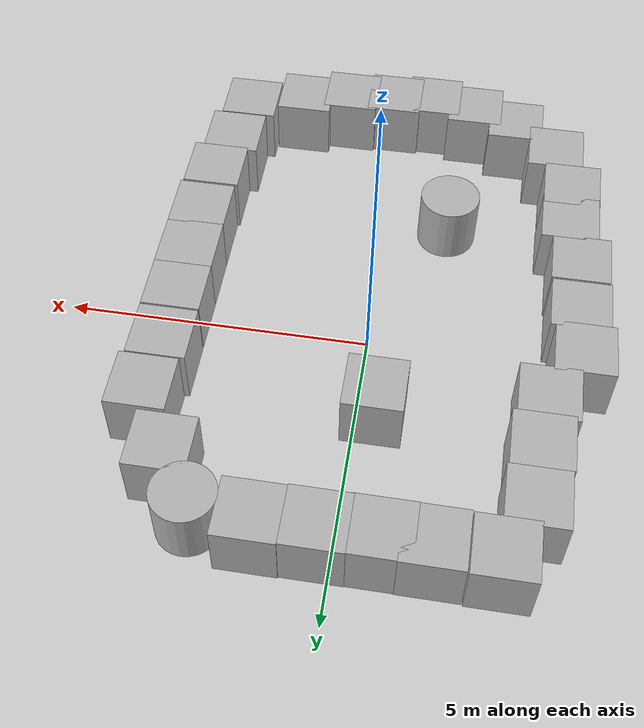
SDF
<sdf version='1.10'>
  <world name='empty'>
    <physics name='1ms' type='ignored'>
      <max_step_size>0.004</max_step_size>
      <real_time_factor>1</real_time_factor>
      <real_time_update_rate>250</real_time_update_rate>
    </physics>
    <plugin name='gz::sim::systems::Physics' filename='gz-sim-physics-system'/>
    <plugin name='gz::sim::systems::UserCommands' filename='gz-sim-user-commands-system'/>
    <plugin name='gz::sim::systems::SceneBroadcaster' filename='gz-sim-scene-broadcaster-system'/>
    <plugin name='gz::sim::systems::Sensors' filename='gz-sim-sensors-system'>
      <render_engine>ogre2</render_engine>
    </plugin>
    <plugin name='gz::sim::systems::Contact' filename='gz-sim-contact-system'/>
    <gravity>0 0 -9.8000000000000007</gravity>
    <magnetic_field>5.5644999999999998e-06 2.2875799999999999e-05 -4.2388400000000002e-05</magnetic_field>
    <atmosphere type='adiabatic'/>
    <scene>
      <ambient>0.400000006 0.400000006 0.400000006 1</ambient>
      <background>0.699999988 0.699999988 0.699999988 1</background>
      <shadows>true</shadows>
    </scene>
    <model name='ground_plane'>
      <static>true</static>
      <link name='link'>
        <collision name='collision'>
          <geometry>
            <plane>
              <normal>0 0 1</normal>
              <size>100 100</size>
            </plane>
          </geometry>
          <surface>
            <friction>
              <ode/>
            </friction>
            <bounce/>
            <contact/>
          </surface>
        </collision>
        <visual name='visual'>
          <geometry>
            <plane>
              <normal>0 0 1</normal>
              <size>100 100</size>
            </plane>
          </geometry>
          <material>
            <ambient>0.800000012 0.800000012 0.800000012 1</ambient>
            <diffuse>0.800000012 0.800000012 0.800000012 1</diffuse>
            <specular>0.800000012 0.800000012 0.800000012 1</specular>
          </material>
        </visual>
        <pose>0 0 0 0 0 0</pose>
        <inertial>
          <pose>0 0 0 0 0 0</pose>
          <mass>1</mass>
          <inertia>
            <ixx>1</ixx>
            <ixy>0</ixy>
            <ixz>0</ixz>
            <iyy>1</iyy>
            <iyz>0</iyz>
            <izz>1</izz>
          </inertia>
        </inertial>
        <enable_wind>false</enable_wind>
      </link>
      <pose>0 0 0 0 0 0</pose>
      <self_collide>false</self_collide>
    </model>
    <model name='box'>
      <pose>1.809546199799039 -4.9402323376090997 0.49999999029968045 -2.986547555354007e-10 1.958538267671535e-08 5.8365317810617304e-07</pose>
      <link name='box_link'>
        <inertial>
          <inertia>
            <ixx>0.16666</ixx>
            <ixy>0</ixy>
            <ixz>0</ixz>
            <iyy>0.16666</iyy>
            <iyz>0</iyz>
            <izz>0.16666</izz>
          </inertia>
          <mass>1</mass>
          <pose>0 0 0 0 0 0</pose>
        </inertial>
        <collision name='box_collision'>
          <geometry>
            <box>
              <size>0.95 0.95 1</size>
            </box>
          </geometry>
          <surface>
            <friction>
              <ode/>
            </friction>
            <bounce/>
            <contact/>
          </surface>
        </collision>
        <visual name='box_visual'>
          <geometry>
            <box>
              <size>0.95 0.95 1</size>
            </box>
          </geometry>
          <material>
            <ambient>0.300000012 0.300000012 0.300000012 1</ambient>
            <diffuse>0.699999988 0.699999988 0.699999988 1</diffuse>
            <specular>1 1 1 1</specular>
          </material>
        </visual>
        <pose>0 0 0 0 0 0</pose>
        <enable_wind>false</enable_wind>
      </link>
      <static>true</static>
      <self_collide>false</self_collide>
    </model>
    <model name='cylinder'>
      <pose>2.1410001245905712 3.7526052725357246 0.50000115523893041 -5.2950195691341743e-07 2.2663390121578483e-06 -0.0083060642175395091</pose>
      <link name='cylinder_link'>
        <inertial>
          <inertia>
            <ixx>0.14580000000000001</ixx>
            <ixy>0</ixy>
            <ixz>0</ixz>
            <iyy>0.14580000000000001</iyy>
            <iyz>0</iyz>
            <izz>0.125</izz>
          </inertia>
          <mass>1</mass>
          <pose>0 0 0 0 0 0</pose>
        </inertial>
        <collision name='cylinder_collision'>
          <geometry>
            <cylinder>
              <radius>0.5</radius>
              <length>1</length>
            </cylinder>
          </geometry>
          <surface>
            <friction>
              <ode/>
            </friction>
            <bounce/>
            <contact/>
          </surface>
        </collision>
        <visual name='cylinder_visual'>
          <geometry>
            <cylinder>
              <radius>0.5</radius>
              <length>1</length>
            </cylinder>
          </geometry>
          <material>
            <ambient>0.300000012 0.300000012 0.300000012 1</ambient>
            <diffuse>0.699999988 0.699999988 0.699999988 1</diffuse>
            <specular>1 1 1 1</specular>
          </material>
        </visual>
        <pose>0 0 0 0 0 0</pose>
        <enable_wind>false</enable_wind>
      </link>
      <static>true</static>
      <self_collide>false</self_collide>
    </model>

    <model name='box_0'>
      <pose>2.6603934322666709 2.9766633373083851 0.49999999125674222 -2.207446480334921e-08 -4.6172541070894904e-09 0.00166350674711508</pose>
      <link name='box_link'>
        <inertial>
          <inertia>
            <ixx>0.16666</ixx>
            <ixy>0</ixy>
            <ixz>0</ixz>
            <iyy>0.16666</iyy>
            <iyz>0</iyz>
            <izz>0.16666</izz>
          </inertia>
          <mass>1</mass>
          <pose>0 0 0 0 0 0</pose>
        </inertial>
        <collision name='box_collision'>
          <geometry>
            <box>
              <size>0.95 0.95 1</size>
            </box>
          </geometry>
          <surface>
            <friction>
              <ode/>
            </friction>
            <bounce/>
            <contact/>
          </surface>
        </collision>
        <visual name='box_visual'>
          <geometry>
            <box>
              <size>0.95 0.95 1</size>
            </box>
          </geometry>
          <material>
            <ambient>0.300000012 0.300000012 0.300000012 1</ambient>
            <diffuse>0.699999988 0.699999988 0.699999988 1</diffuse>
            <specular>1 1 1 1</specular>
          </material>
        </visual>
        <pose>0 0 0 0 0 0</pose>
        <enable_wind>false</enable_wind>
      </link>
      <static>true</static>
      <self_collide>false</self_collide>
    </model>
    <model name='box_1'>
      <pose>3.2035257619709796 1.9767363113539189 0.4999999904291339 -2.0251758846170973e-08 -1.1458137137976019e-09 3.722328903868478e-06</pose>
      <link name='box_link'>
        <inertial>
          <inertia>
            <ixx>0.16666</ixx>
            <ixy>0</ixy>
            <ixz>0</ixz>
            <iyy>0.16666</iyy>
            <iyz>0</iyz>
            <izz>0.16666</izz>
          </inertia>
          <mass>1</mass>
          <pose>0 0 0 0 0 0</pose>
        </inertial>
        <collision name='box_collision'>
          <geometry>
            <box>
              <size>0.95 0.95 1</size>
            </box>
          </geometry>
          <surface>
            <friction>
              <ode/>
            </friction>
            <bounce/>
            <contact/>
          </surface>
        </collision>
        <visual name='box_visual'>
          <geometry>
            <box>
              <size>0.95 0.95 1</size>
            </box>
          </geometry>
          <material>
            <ambient>0.300000012 0.300000012 0.300000012 1</ambient>
            <diffuse>0.699999988 0.699999988 0.699999988 1</diffuse>
            <specular>1 1 1 1</specular>
          </material>
        </visual>
        <pose>0 0 0 0 0 0</pose>
        <enable_wind>false</enable_wind>
      </link>
      <static>true</static>
      <self_collide>false</self_collide>
    </model>
    <model name='box_2'>
      <pose>3.1228450742552147 1.0066171602471112 0.49999999065514378 -2.0093639513144701e-08 1.55998168735706e-09 2.8588034552977104e-07</pose>
      <link name='box_link'>
        <inertial>
          <inertia>
            <ixx>0.16666</ixx>
            <ixy>0</ixy>
            <ixz>0</ixz>
            <iyy>0.16666</iyy>
            <iyz>0</iyz>
            <izz>0.16666</izz>
          </inertia>
          <mass>1</mass>
          <pose>0 0 0 0 0 0</pose>
        </inertial>
        <collision name='box_collision'>
          <geometry>
            <box>
              <size>0.95 0.95 1</size>
            </box>
          </geometry>
          <surface>
            <friction>
              <ode/>
            </friction>
            <bounce/>
            <contact/>
          </surface>
        </collision>
        <visual name='box_visual'>
          <geometry>
            <box>
              <size>0.95 0.95 1</size>
            </box>
          </geometry>
          <material>
            <ambient>0.300000012 0.300000012 0.300000012 1</ambient>
            <diffuse>0.699999988 0.699999988 0.699999988 1</diffuse>
            <specular>1 1 1 1</specular>
          </material>
        </visual>
        <pose>0 0 0 0 0 0</pose>
        <enable_wind>false</enable_wind>
      </link>
      <static>true</static>
      <self_collide>false</self_collide>
    </model>
    <model name='box_3'>
      <pose>3.1228450252028361 0.029686162780629657 0.49999999083574903 -2.0718320255241097e-08 2.4006082701188849e-09 1.1021439447636742e-08</pose>
      <link name='box_link'>
        <inertial>
          <inertia>
            <ixx>0.16666</ixx>
            <ixy>0</ixy>
            <ixz>0</ixz>
            <iyy>0.16666</iyy>
            <iyz>0</iyz>
            <izz>0.16666</izz>
          </inertia>
          <mass>1</mass>
          <pose>0 0 0 0 0 0</pose>
        </inertial>
        <collision name='box_collision'>
          <geometry>
            <box>
              <size>0.95 0.95 1</size>
            </box>
          </geometry>
          <surface>
            <friction>
              <ode/>
            </friction>
            <bounce/>
            <contact/>
          </surface>
        </collision>
        <visual name='box_visual'>
          <geometry>
            <box>
              <size>0.95 0.95 1</size>
            </box>
          </geometry>
          <material>
            <ambient>0.300000012 0.300000012 0.300000012 1</ambient>
            <diffuse>0.699999988 0.699999988 0.699999988 1</diffuse>
            <specular>1 1 1 1</specular>
          </material>
        </visual>
        <pose>0 0 0 0 0 0</pose>
        <enable_wind>false</enable_wind>
      </link>
      <static>true</static>
      <self_collide>false</self_collide>
    </model>
    <model name='box_4'>
      <pose>3.1228451167951263 -0.88949563487963212 0.4999999902038082 1.4065555202733004e-08 1.916044049123483e-09 -1.8032760088271216e-08</pose>
      <link name='box_link'>
        <inertial>
          <inertia>
            <ixx>0.16666</ixx>
            <ixy>0</ixy>
            <ixz>0</ixz>
            <iyy>0.16666</iyy>
            <iyz>0</iyz>
            <izz>0.16666</izz>
          </inertia>
          <mass>1</mass>
          <pose>0 0 0 0 0 0</pose>
        </inertial>
        <collision name='box_collision'>
          <geometry>
            <box>
              <size>0.95 0.95 1</size>
            </box>
          </geometry>
          <surface>
            <friction>
              <ode/>
            </friction>
            <bounce/>
            <contact/>
          </surface>
        </collision>
        <visual name='box_visual'>
          <geometry>
            <box>
              <size>0.95 0.95 1</size>
            </box>
          </geometry>
          <material>
            <ambient>0.300000012 0.300000012 0.300000012 1</ambient>
            <diffuse>0.699999988 0.699999988 0.699999988 1</diffuse>
            <specular>1 1 1 1</specular>
          </material>
        </visual>
        <pose>0 0 0 0 0 0</pose>
        <enable_wind>false</enable_wind>
      </link>
      <static>true</static>
      <self_collide>false</self_collide>
    </model>
    <model name='box_5'>
      <pose>3.1225490243904845 -1.8117459339456106 0.49999999030205478 1.9459012981212005e-08 1.0456011089368251e-10 -1.6225034581375315e-07</pose>
      <link name='box_link'>
        <inertial>
          <inertia>
            <ixx>0.16666</ixx>
            <ixy>0</ixy>
            <ixz>0</ixz>
            <iyy>0.16666</iyy>
            <iyz>0</iyz>
            <izz>0.16666</izz>
          </inertia>
          <mass>1</mass>
          <pose>0 0 0 0 0 0</pose>
        </inertial>
        <collision name='box_collision'>
          <geometry>
            <box>
              <size>0.95 0.95 1</size>
            </box>
          </geometry>
          <surface>
            <friction>
              <ode/>
            </friction>
            <bounce/>
            <contact/>
          </surface>
        </collision>
        <visual name='box_visual'>
          <geometry>
            <box>
              <size>0.95 0.95 1</size>
            </box>
          </geometry>
          <material>
            <ambient>0.300000012 0.300000012 0.300000012 1</ambient>
            <diffuse>0.699999988 0.699999988 0.699999988 1</diffuse>
            <specular>1 1 1 1</specular>
          </material>
        </visual>
        <pose>0 0 0 0 0 0</pose>
        <enable_wind>false</enable_wind>
      </link>
      <static>true</static>
      <self_collide>false</self_collide>
    </model>
    <model name='box_6'>
      <pose>3.0816127278921703 -2.7953392068309468 0.4999999902129747 1.9582048937141098e-08 -1.8308123312482564e-11 -3.9993023369416865e-07</pose>
      <link name='box_link'>
        <inertial>
          <inertia>
            <ixx>0.16666</ixx>
            <ixy>0</ixy>
            <ixz>0</ixz>
            <iyy>0.16666</iyy>
            <iyz>0</iyz>
            <izz>0.16666</izz>
          </inertia>
          <mass>1</mass>
          <pose>0 0 0 0 0 0</pose>
        </inertial>
        <collision name='box_collision'>
          <geometry>
            <box>
              <size>0.95 0.95 1</size>
            </box>
          </geometry>
          <surface>
            <friction>
              <ode/>
            </friction>
            <bounce/>
            <contact/>
          </surface>
        </collision>
        <visual name='box_visual'>
          <geometry>
            <box>
              <size>0.95 0.95 1</size>
            </box>
          </geometry>
          <material>
            <ambient>0.300000012 0.300000012 0.300000012 1</ambient>
            <diffuse>0.699999988 0.699999988 0.699999988 1</diffuse>
            <specular>1 1 1 1</specular>
          </material>
        </visual>
        <pose>0 0 0 0 0 0</pose>
        <enable_wind>false</enable_wind>
      </link>
      <static>true</static>
      <self_collide>false</self_collide>
    </model>
    <model name='box_7'>
      <pose>2.9267532254914657 -3.688935173427331 0.4999999902933952 1.9401568842218004e-08 5.665215500348737e-11 -2.5459842026370619e-07</pose>
      <link name='box_link'>
        <inertial>
          <inertia>
            <ixx>0.16666</ixx>
            <ixy>0</ixy>
            <ixz>0</ixz>
            <iyy>0.16666</iyy>
            <iyz>0</iyz>
            <izz>0.16666</izz>
          </inertia>
          <mass>1</mass>
          <pose>0 0 0 0 0 0</pose>
        </inertial>
        <collision name='box_collision'>
          <geometry>
            <box>
              <size>0.95 0.95 1</size>
            </box>
          </geometry>
          <surface>
            <friction>
              <ode/>
            </friction>
            <bounce/>
            <contact/>
          </surface>
        </collision>
        <visual name='box_visual'>
          <geometry>
            <box>
              <size>0.95 0.95 1</size>
            </box>
          </geometry>
          <material>
            <ambient>0.300000012 0.300000012 0.300000012 1</ambient>
            <diffuse>0.699999988 0.699999988 0.699999988 1</diffuse>
            <specular>1 1 1 1</specular>
          </material>
        </visual>
        <pose>0 0 0 0 0 0</pose>
        <enable_wind>false</enable_wind>
      </link>
      <static>true</static>
      <self_collide>false</self_collide>
    </model>
    <model name='box_8'>
      <pose>2.7873074039135548 -4.6545508624547338 0.49999999962364311 3.7118111288328937e-08 3.7799812925208874e-08 5.0589760782613717e-07</pose>
      <link name='box_link'>
        <inertial>
          <inertia>
            <ixx>0.16666</ixx>
            <ixy>0</ixy>
            <ixz>0</ixz>
            <iyy>0.16666</iyy>
            <iyz>0</iyz>
            <izz>0.16666</izz>
          </inertia>
          <mass>1</mass>
          <pose>0 0 0 0 0 0</pose>
        </inertial>
        <collision name='box_collision'>
          <geometry>
            <box>
              <size>0.95 0.95 1</size>
            </box>
          </geometry>
          <surface>
            <friction>
              <ode/>
            </friction>
            <bounce/>
            <contact/>
          </surface>
        </collision>
        <visual name='box_visual'>
          <geometry>
            <box>
              <size>0.95 0.95 1</size>
            </box>
          </geometry>
          <material>
            <ambient>0.300000012 0.300000012 0.300000012 1</ambient>
            <diffuse>0.699999988 0.699999988 0.699999988 1</diffuse>
            <specular>1 1 1 1</specular>
          </material>
        </visual>
        <pose>0 0 0 0 0 0</pose>
        <enable_wind>false</enable_wind>
      </link>
      <static>true</static>
      <self_collide>false</self_collide>
    </model>
    <model name='box_9'>
      <pose>1.1790364302105372 3.8857356265624712 0.49999999300209635 -1.9566314054251308e-08 2.7697514688775331e-08 1.3844576776734326e-07</pose>
      <link name='box_link'>
        <inertial>
          <inertia>
            <ixx>0.16666</ixx>
            <ixy>0</ixy>
            <ixz>0</ixz>
            <iyy>0.16666</iyy>
            <iyz>0</iyz>
            <izz>0.16666</izz>
          </inertia>
          <mass>1</mass>
          <pose>0 0 0 0 0 0</pose>
        </inertial>
        <collision name='box_collision'>
          <geometry>
            <box>
              <size>0.95 0.95 1</size>
            </box>
          </geometry>
          <surface>
            <friction>
              <ode/>
            </friction>
            <bounce/>
            <contact/>
          </surface>
        </collision>
        <visual name='box_visual'>
          <geometry>
            <box>
              <size>0.95 0.95 1</size>
            </box>
          </geometry>
          <material>
            <ambient>0.300000012 0.300000012 0.300000012 1</ambient>
            <diffuse>0.699999988 0.699999988 0.699999988 1</diffuse>
            <specular>1 1 1 1</specular>
          </material>
        </visual>
        <pose>0 0 0 0 0 0</pose>
        <enable_wind>false</enable_wind>
      </link>
      <static>true</static>
      <self_collide>false</self_collide>
    </model>
    <model name='box_10'>
      <pose>0.2323113808103574 3.8697468031929829 0.49999999071613677 -2.1072304912975059e-09 2.0633341390026428e-08 7.5409881506112208e-08</pose>
      <link name='box_link'>
        <inertial>
          <inertia>
            <ixx>0.16666</ixx>
            <ixy>0</ixy>
            <ixz>0</ixz>
            <iyy>0.16666</iyy>
            <iyz>0</iyz>
            <izz>0.16666</izz>
          </inertia>
          <mass>1</mass>
          <pose>0 0 0 0 0 0</pose>
        </inertial>
        <collision name='box_collision'>
          <geometry>
            <box>
              <size>0.95 0.95 1</size>
            </box>
          </geometry>
          <surface>
            <friction>
              <ode/>
            </friction>
            <bounce/>
            <contact/>
          </surface>
        </collision>
        <visual name='box_visual'>
          <geometry>
            <box>
              <size>0.95 0.95 1</size>
            </box>
          </geometry>
          <material>
            <ambient>0.300000012 0.300000012 0.300000012 1</ambient>
            <diffuse>0.699999988 0.699999988 0.699999988 1</diffuse>
            <specular>1 1 1 1</specular>
          </material>
        </visual>
        <pose>0 0 0 0 0 0</pose>
        <enable_wind>false</enable_wind>
      </link>
      <static>true</static>
      <self_collide>false</self_collide>
    </model>
    <model name='box_11'>
      <pose>-0.68722848556540495 3.8625809285938759 0.49999999021193509 7.3765246244905513e-11 -1.218859090891808e-08 -3.677853341798169e-08</pose>
      <link name='box_link'>
        <inertial>
          <inertia>
            <ixx>0.16666</ixx>
            <ixy>0</ixy>
            <ixz>0</ixz>
            <iyy>0.16666</iyy>
            <iyz>0</iyz>
            <izz>0.16666</izz>
          </inertia>
          <mass>1</mass>
          <pose>0 0 0 0 0 0</pose>
        </inertial>
        <collision name='box_collision'>
          <geometry>
            <box>
              <size>0.95 0.95 1</size>
            </box>
          </geometry>
          <surface>
            <friction>
              <ode/>
            </friction>
            <bounce/>
            <contact/>
          </surface>
        </collision>
        <visual name='box_visual'>
          <geometry>
            <box>
              <size>0.95 0.95 1</size>
            </box>
          </geometry>
          <material>
            <ambient>0.300000012 0.300000012 0.300000012 1</ambient>
            <diffuse>0.699999988 0.699999988 0.699999988 1</diffuse>
            <specular>1 1 1 1</specular>
          </material>
        </visual>
        <pose>0 0 0 0 0 0</pose>
        <enable_wind>false</enable_wind>
      </link>
      <static>true</static>
      <self_collide>false</self_collide>
    </model>
    <model name='box_12'>
      <pose>-1.4210976769018788 3.870547864142853 0.49999999307971599 -1.0877208602376788e-08 -2.4708303913871301e-08 -4.2179947197630195e-07</pose>
      <link name='box_link'>
        <inertial>
          <inertia>
            <ixx>0.16666</ixx>
            <ixy>0</ixy>
            <ixz>0</ixz>
            <iyy>0.16666</iyy>
            <iyz>0</iyz>
            <izz>0.16666</izz>
          </inertia>
          <mass>1</mass>
          <pose>0 0 0 0 0 0</pose>
        </inertial>
        <collision name='box_collision'>
          <geometry>
            <box>
              <size>0.95 0.95 1</size>
            </box>
          </geometry>
          <surface>
            <friction>
              <ode/>
            </friction>
            <bounce/>
            <contact/>
          </surface>
        </collision>
        <visual name='box_visual'>
          <geometry>
            <box>
              <size>0.95 0.95 1</size>
            </box>
          </geometry>
          <material>
            <ambient>0.300000012 0.300000012 0.300000012 1</ambient>
            <diffuse>0.699999988 0.699999988 0.699999988 1</diffuse>
            <specular>1 1 1 1</specular>
          </material>
        </visual>
        <pose>0 0 0 0 0 0</pose>
        <enable_wind>false</enable_wind>
      </link>
      <static>true</static>
      <self_collide>false</self_collide>
    </model>
    <model name='box_13'>
      <pose>-2.3896286204964201 3.8907674573543534 0.49999999878399531 -3.4705777365958035e-08 -3.6732983437401329e-08 -1.0190946607347615e-06</pose>
      <link name='box_link'>
        <inertial>
          <inertia>
            <ixx>0.16666</ixx>
            <ixy>0</ixy>
            <ixz>0</ixz>
            <iyy>0.16666</iyy>
            <iyz>0</iyz>
            <izz>0.16666</izz>
          </inertia>
          <mass>1</mass>
          <pose>0 0 0 0 0 0</pose>
        </inertial>
        <collision name='box_collision'>
          <geometry>
            <box>
              <size>0.95 0.95 1</size>
            </box>
          </geometry>
          <surface>
            <friction>
              <ode/>
            </friction>
            <bounce/>
            <contact/>
          </surface>
        </collision>
        <visual name='box_visual'>
          <geometry>
            <box>
              <size>0.95 0.95 1</size>
            </box>
          </geometry>
          <material>
            <ambient>0.300000012 0.300000012 0.300000012 1</ambient>
            <diffuse>0.699999988 0.699999988 0.699999988 1</diffuse>
            <specular>1 1 1 1</specular>
          </material>
        </visual>
        <pose>0 0 0 0 0 0</pose>
        <enable_wind>false</enable_wind>
      </link>
      <static>true</static>
      <self_collide>false</self_collide>
    </model>
    <model name='box_14'>
      <pose>-2.7891542450667712 3.0229222050459703 0.49999999098076264 -2.0636241415506918e-08 2.6176300848485755e-09 -8.3540372751254159e-07</pose>
      <link name='box_link'>
        <inertial>
          <inertia>
            <ixx>0.16666</ixx>
            <ixy>0</ixy>
            <ixz>0</ixz>
            <iyy>0.16666</iyy>
            <iyz>0</iyz>
            <izz>0.16666</izz>
          </inertia>
          <mass>1</mass>
          <pose>0 0 0 0 0 0</pose>
        </inertial>
        <collision name='box_collision'>
          <geometry>
            <box>
              <size>0.95 0.95 1</size>
            </box>
          </geometry>
          <surface>
            <friction>
              <ode/>
            </friction>
            <bounce/>
            <contact/>
          </surface>
        </collision>
        <visual name='box_visual'>
          <geometry>
            <box>
              <size>0.95 0.95 1</size>
            </box>
          </geometry>
          <material>
            <ambient>0.300000012 0.300000012 0.300000012 1</ambient>
            <diffuse>0.699999988 0.699999988 0.699999988 1</diffuse>
            <specular>1 1 1 1</specular>
          </material>
        </visual>
        <pose>0 0 0 0 0 0</pose>
        <enable_wind>false</enable_wind>
      </link>
      <static>true</static>
      <self_collide>false</self_collide>
    </model>
    <model name='box_15'>
      <pose>-2.8166739059984693 2.0731611730978901 0.49999999112723964 -2.1159136827774953e-08 3.495545631421807e-09 -1.0816444685849916e-06</pose>
      <link name='box_link'>
        <inertial>
          <inertia>
            <ixx>0.16666</ixx>
            <ixy>0</ixy>
            <ixz>0</ixz>
            <iyy>0.16666</iyy>
            <iyz>0</iyz>
            <izz>0.16666</izz>
          </inertia>
          <mass>1</mass>
          <pose>0 0 0 0 0 0</pose>
        </inertial>
        <collision name='box_collision'>
          <geometry>
            <box>
              <size>0.95 0.95 1</size>
            </box>
          </geometry>
          <surface>
            <friction>
              <ode/>
            </friction>
            <bounce/>
            <contact/>
          </surface>
        </collision>
        <visual name='box_visual'>
          <geometry>
            <box>
              <size>0.95 0.95 1</size>
            </box>
          </geometry>
          <material>
            <ambient>0.300000012 0.300000012 0.300000012 1</ambient>
            <diffuse>0.699999988 0.699999988 0.699999988 1</diffuse>
            <specular>1 1 1 1</specular>
          </material>
        </visual>
        <pose>0 0 0 0 0 0</pose>
        <enable_wind>false</enable_wind>
      </link>
      <static>true</static>
      <self_collide>false</self_collide>
    </model>
    <model name='box_16'>
      <pose>-2.8845917791956746 1.2065923013318689 0.49999999175380072 -2.2609156789821474e-08 6.2832201039603404e-09 -2.4839739303039459e-06</pose>
      <link name='box_link'>
        <inertial>
          <inertia>
            <ixx>0.16666</ixx>
            <ixy>0</ixy>
            <ixz>0</ixz>
            <iyy>0.16666</iyy>
            <iyz>0</iyz>
            <izz>0.16666</izz>
          </inertia>
          <mass>1</mass>
          <pose>0 0 0 0 0 0</pose>
        </inertial>
        <collision name='box_collision'>
          <geometry>
            <box>
              <size>0.95 0.95 1</size>
            </box>
          </geometry>
          <surface>
            <friction>
              <ode/>
            </friction>
            <bounce/>
            <contact/>
          </surface>
        </collision>
        <visual name='box_visual'>
          <geometry>
            <box>
              <size>0.95 0.95 1</size>
            </box>
          </geometry>
          <material>
            <ambient>0.300000012 0.300000012 0.300000012 1</ambient>
            <diffuse>0.699999988 0.699999988 0.699999988 1</diffuse>
            <specular>1 1 1 1</specular>
          </material>
        </visual>
        <pose>0 0 0 0 0 0</pose>
        <enable_wind>false</enable_wind>
      </link>
      <static>true</static>
      <self_collide>false</self_collide>
    </model>
    <model name='box_17'>
      <pose>-3.4011477203977813 0.29398457891090723 0.49999999038226994 -1.6949875610735054e-08 -2.2278366807512278e-09 -1.3511211068672923e-06</pose>
      <link name='box_link'>
        <inertial>
          <inertia>
            <ixx>0.16666</ixx>
            <ixy>0</ixy>
            <ixz>0</ixz>
            <iyy>0.16666</iyy>
            <iyz>0</iyz>
            <izz>0.16666</izz>
          </inertia>
          <mass>1</mass>
          <pose>0 0 0 0 0 0</pose>
        </inertial>
        <collision name='box_collision'>
          <geometry>
            <box>
              <size>0.95 0.95 1</size>
            </box>
          </geometry>
          <surface>
            <friction>
              <ode/>
            </friction>
            <bounce/>
            <contact/>
          </surface>
        </collision>
        <visual name='box_visual'>
          <geometry>
            <box>
              <size>0.95 0.95 1</size>
            </box>
          </geometry>
          <material>
            <ambient>0.300000012 0.300000012 0.300000012 1</ambient>
            <diffuse>0.699999988 0.699999988 0.699999988 1</diffuse>
            <specular>1 1 1 1</specular>
          </material>
        </visual>
        <pose>0 0 0 0 0 0</pose>
        <enable_wind>false</enable_wind>
      </link>
      <static>true</static>
      <self_collide>false</self_collide>
    </model>
    <model name='box_18'>
      <pose>-3.3153952992590794 -0.57636908210559123 0.49999999367536552 2.5788371565750717e-08 -1.4321430802037446e-08 1.6196929966422596e-07</pose>
      <link name='box_link'>
        <inertial>
          <inertia>
            <ixx>0.16666</ixx>
            <ixy>0</ixy>
            <ixz>0</ixz>
            <iyy>0.16666</iyy>
            <iyz>0</iyz>
            <izz>0.16666</izz>
          </inertia>
          <mass>1</mass>
          <pose>0 0 0 0 0 0</pose>
        </inertial>
        <collision name='box_collision'>
          <geometry>
            <box>
              <size>0.95 0.95 1</size>
            </box>
          </geometry>
          <surface>
            <friction>
              <ode/>
            </friction>
            <bounce/>
            <contact/>
          </surface>
        </collision>
        <visual name='box_visual'>
          <geometry>
            <box>
              <size>0.95 0.95 1</size>
            </box>
          </geometry>
          <material>
            <ambient>0.300000012 0.300000012 0.300000012 1</ambient>
            <diffuse>0.699999988 0.699999988 0.699999988 1</diffuse>
            <specular>1 1 1 1</specular>
          </material>
        </visual>
        <pose>0 0 0 0 0 0</pose>
        <enable_wind>false</enable_wind>
      </link>
      <static>true</static>
      <self_collide>false</self_collide>
    </model>
    <model name='box_19'>
      <pose>-3.2983043806422065 -1.5571223120397379 0.49999999025446762 1.9625820957091464e-08 1.7812660928576307e-10 4.4632274146016826e-07</pose>
      <link name='box_link'>
        <inertial>
          <inertia>
            <ixx>0.16666</ixx>
            <ixy>0</ixy>
            <ixz>0</ixz>
            <iyy>0.16666</iyy>
            <iyz>0</iyz>
            <izz>0.16666</izz>
          </inertia>
          <mass>1</mass>
          <pose>0 0 0 0 0 0</pose>
        </inertial>
        <collision name='box_collision'>
          <geometry>
            <box>
              <size>0.95 0.95 1</size>
            </box>
          </geometry>
          <surface>
            <friction>
              <ode/>
            </friction>
            <bounce/>
            <contact/>
          </surface>
        </collision>
        <visual name='box_visual'>
          <geometry>
            <box>
              <size>0.95 0.95 1</size>
            </box>
          </geometry>
          <material>
            <ambient>0.300000012 0.300000012 0.300000012 1</ambient>
            <diffuse>0.699999988 0.699999988 0.699999988 1</diffuse>
            <specular>1 1 1 1</specular>
          </material>
        </visual>
        <pose>0 0 0 0 0 0</pose>
        <enable_wind>false</enable_wind>
      </link>
      <static>true</static>
      <self_collide>false</self_collide>
    </model>
    <model name='box_20'>
      <pose>-3.1017780184606472 -2.4682114057626028 0.49999999050725791 1.9904116522240299e-08 9.3875736121459313e-10 3.0322020871411945e-07</pose>
      <link name='box_link'>
        <inertial>
          <inertia>
            <ixx>0.16666</ixx>
            <ixy>0</ixy>
            <ixz>0</ixz>
            <iyy>0.16666</iyy>
            <iyz>0</iyz>
            <izz>0.16666</izz>
          </inertia>
          <mass>1</mass>
          <pose>0 0 0 0 0 0</pose>
        </inertial>
        <collision name='box_collision'>
          <geometry>
            <box>
              <size>0.95 0.95 1</size>
            </box>
          </geometry>
          <surface>
            <friction>
              <ode/>
            </friction>
            <bounce/>
            <contact/>
          </surface>
        </collision>
        <visual name='box_visual'>
          <geometry>
            <box>
              <size>0.95 0.95 1</size>
            </box>
          </geometry>
          <material>
            <ambient>0.300000012 0.300000012 0.300000012 1</ambient>
            <diffuse>0.699999988 0.699999988 0.699999988 1</diffuse>
            <specular>1 1 1 1</specular>
          </material>
        </visual>
        <pose>0 0 0 0 0 0</pose>
        <enable_wind>false</enable_wind>
      </link>
      <static>true</static>
      <self_collide>false</self_collide>
    </model>
    <model name='box_21'>
      <pose>-3.1107129930713597 -3.2631738473551297 0.49999999060210898 1.8936569812795886e-08 -1.7977839317764517e-10 -1.2876300331454908e-07</pose>
      <link name='box_link'>
        <inertial>
          <inertia>
            <ixx>0.16666</ixx>
            <ixy>0</ixy>
            <ixz>0</ixz>
            <iyy>0.16666</iyy>
            <iyz>0</iyz>
            <izz>0.16666</izz>
          </inertia>
          <mass>1</mass>
          <pose>0 0 0 0 0 0</pose>
        </inertial>
        <collision name='box_collision'>
          <geometry>
            <box>
              <size>0.95 0.95 1</size>
            </box>
          </geometry>
          <surface>
            <friction>
              <ode/>
            </friction>
            <bounce/>
            <contact/>
          </surface>
        </collision>
        <visual name='box_visual'>
          <geometry>
            <box>
              <size>0.95 0.95 1</size>
            </box>
          </geometry>
          <material>
            <ambient>0.300000012 0.300000012 0.300000012 1</ambient>
            <diffuse>0.699999988 0.699999988 0.699999988 1</diffuse>
            <specular>1 1 1 1</specular>
          </material>
        </visual>
        <pose>0 0 0 0 0 0</pose>
        <enable_wind>false</enable_wind>
      </link>
      <static>true</static>
      <self_collide>false</self_collide>
    </model>
    <model name='box_22'>
      <pose>-2.8072254782010413 -4.1677914956390056 0.49999999871216516 3.4538393578230334e-08 -3.6942117399298976e-08 -0.00061580640544071951</pose>
      <link name='box_link'>
        <inertial>
          <inertia>
            <ixx>0.16666</ixx>
            <ixy>0</ixy>
            <ixz>0</ixz>
            <iyy>0.16666</iyy>
            <iyz>0</iyz>
            <izz>0.16666</izz>
          </inertia>
          <mass>1</mass>
          <pose>0 0 0 0 0 0</pose>
        </inertial>
        <collision name='box_collision'>
          <geometry>
            <box>
              <size>0.95 0.95 1</size>
            </box>
          </geometry>
          <surface>
            <friction>
              <ode/>
            </friction>
            <bounce/>
            <contact/>
          </surface>
        </collision>
        <visual name='box_visual'>
          <geometry>
            <box>
              <size>0.95 0.95 1</size>
            </box>
          </geometry>
          <material>
            <ambient>0.300000012 0.300000012 0.300000012 1</ambient>
            <diffuse>0.699999988 0.699999988 0.699999988 1</diffuse>
            <specular>1 1 1 1</specular>
          </material>
        </visual>
        <pose>0 0 0 0 0 0</pose>
        <enable_wind>false</enable_wind>
      </link>
      <static>true</static>
      <self_collide>false</self_collide>
    </model>
    <model name='box_23'>
      <pose>-2.0661433230837747 -4.787722524250734 0.49999999050111377 -1.0330882602405825e-09 -1.9800885744001755e-08 -1.8323910497200814e-06</pose>
      <link name='box_link'>
        <inertial>
          <inertia>
            <ixx>0.16666</ixx>
            <ixy>0</ixy>
            <ixz>0</ixz>
            <iyy>0.16666</iyy>
            <iyz>0</iyz>
            <izz>0.16666</izz>
          </inertia>
          <mass>1</mass>
          <pose>0 0 0 0 0 0</pose>
        </inertial>
        <collision name='box_collision'>
          <geometry>
            <box>
              <size>0.95 0.95 1</size>
            </box>
          </geometry>
          <surface>
            <friction>
              <ode/>
            </friction>
            <bounce/>
            <contact/>
          </surface>
        </collision>
        <visual name='box_visual'>
          <geometry>
            <box>
              <size>0.95 0.95 1</size>
            </box>
          </geometry>
          <material>
            <ambient>0.300000012 0.300000012 0.300000012 1</ambient>
            <diffuse>0.699999988 0.699999988 0.699999988 1</diffuse>
            <specular>1 1 1 1</specular>
          </material>
        </visual>
        <pose>0 0 0 0 0 0</pose>
        <enable_wind>false</enable_wind>
      </link>
      <static>true</static>
      <self_collide>false</self_collide>
    </model>
    <model name='box_24'>
      <pose>-1.3132012953467511 -5.0842277310957336 0.49999999016776747 7.3515209963620776e-10 -1.9238635976624883e-08 -1.0823008134917802e-06</pose>
      <link name='box_link'>
        <inertial>
          <inertia>
            <ixx>0.16666</ixx>
            <ixy>0</ixy>
            <ixz>0</ixz>
            <iyy>0.16666</iyy>
            <iyz>0</iyz>
            <izz>0.16666</izz>
          </inertia>
          <mass>1</mass>
          <pose>0 0 0 0 0 0</pose>
        </inertial>
        <collision name='box_collision'>
          <geometry>
            <box>
              <size>0.95 0.95 1</size>
            </box>
          </geometry>
          <surface>
            <friction>
              <ode/>
            </friction>
            <bounce/>
            <contact/>
          </surface>
        </collision>
        <visual name='box_visual'>
          <geometry>
            <box>
              <size>0.95 0.95 1</size>
            </box>
          </geometry>
          <material>
            <ambient>0.300000012 0.300000012 0.300000012 1</ambient>
            <diffuse>0.699999988 0.699999988 0.699999988 1</diffuse>
            <specular>1 1 1 1</specular>
          </material>
        </visual>
        <pose>0 0 0 0 0 0</pose>
        <enable_wind>false</enable_wind>
      </link>
      <static>true</static>
      <self_collide>false</self_collide>
    </model>
    <model name='box_25'>
      <pose>-0.54565934533065918 -5.2310058098887708 0.49999999079745666 -8.4828186059239781e-10 -1.9411292810413454e-08 -2.7527461141886775e-07</pose>
      <link name='box_link'>
        <inertial>
          <inertia>
            <ixx>0.16666</ixx>
            <ixy>0</ixy>
            <ixz>0</ixz>
            <iyy>0.16666</iyy>
            <iyz>0</iyz>
            <izz>0.16666</izz>
          </inertia>
          <mass>1</mass>
          <pose>0 0 0 0 0 0</pose>
        </inertial>
        <collision name='box_collision'>
          <geometry>
            <box>
              <size>0.95 0.95 1</size>
            </box>
          </geometry>
          <surface>
            <friction>
              <ode/>
            </friction>
            <bounce/>
            <contact/>
          </surface>
        </collision>
        <visual name='box_visual'>
          <geometry>
            <box>
              <size>0.95 0.95 1</size>
            </box>
          </geometry>
          <material>
            <ambient>0.300000012 0.300000012 0.300000012 1</ambient>
            <diffuse>0.699999988 0.699999988 0.699999988 1</diffuse>
            <specular>1 1 1 1</specular>
          </material>
        </visual>
        <pose>0 0 0 0 0 0</pose>
        <enable_wind>false</enable_wind>
      </link>
      <static>true</static>
      <self_collide>false</self_collide>
    </model>
    <model name='box_26'>
      <pose>0.97774893333781465 -5.1243703218757908 0.49999999048775606 1.8923812792228774e-09 1.988187652344756e-08 4.0921117290236989e-07</pose>
      <link name='box_link'>
        <inertial>
          <inertia>
            <ixx>0.16666</ixx>
            <ixy>0</ixy>
            <ixz>0</ixz>
            <iyy>0.16666</iyy>
            <iyz>0</iyz>
            <izz>0.16666</izz>
          </inertia>
          <mass>1</mass>
          <pose>0 0 0 0 0 0</pose>
        </inertial>
        <collision name='box_collision'>
          <geometry>
            <box>
              <size>0.95 0.95 1</size>
            </box>
          </geometry>
          <surface>
            <friction>
              <ode/>
            </friction>
            <bounce/>
            <contact/>
          </surface>
        </collision>
        <visual name='box_visual'>
          <geometry>
            <box>
              <size>0.95 0.95 1</size>
            </box>
          </geometry>
          <material>
            <ambient>0.300000012 0.300000012 0.300000012 1</ambient>
            <diffuse>0.699999988 0.699999988 0.699999988 1</diffuse>
            <specular>1 1 1 1</specular>
          </material>
        </visual>
        <pose>0 0 0 0 0 0</pose>
        <enable_wind>false</enable_wind>
      </link>
      <static>true</static>
      <self_collide>false</self_collide>
    </model>
    <model name='box_27'>
      <pose>0.17251716500921749 -5.1739606270471237 0.49999999146981716 7.3247994257469693e-09 2.1259131257401667e-08 1.8055389984987754e-07</pose>
      <link name='box_link'>
        <inertial>
          <inertia>
            <ixx>0.16666</ixx>
            <ixy>0</ixy>
            <ixz>0</ixz>
            <iyy>0.16666</iyy>
            <iyz>0</iyz>
            <izz>0.16666</izz>
          </inertia>
          <mass>1</mass>
          <pose>0 0 0 0 0 0</pose>
        </inertial>
        <collision name='box_collision'>
          <geometry>
            <box>
              <size>0.95 0.95 1</size>
            </box>
          </geometry>
          <surface>
            <friction>
              <ode/>
            </friction>
            <bounce/>
            <contact/>
          </surface>
        </collision>
        <visual name='box_visual'>
          <geometry>
            <box>
              <size>0.95 0.95 1</size>
            </box>
          </geometry>
          <material>
            <ambient>0.300000012 0.300000012 0.300000012 1</ambient>
            <diffuse>0.699999988 0.699999988 0.699999988 1</diffuse>
            <specular>1 1 1 1</specular>
          </material>
        </visual>
        <pose>0 0 0 0 0 0</pose>
        <enable_wind>false</enable_wind>
      </link>
      <static>true</static>
      <self_collide>false</self_collide>
    </model>
    <model name='cylinder_0'>
      <pose>-1.0548680356600268 -2.6505288428148055 0.49999942638036005 6.5980774214997543e-20 -9.3360837241230277e-20 4.2108430231825184e-22</pose>
      <link name='cylinder_link'>
        <inertial>
          <inertia>
            <ixx>0.14580000000000001</ixx>
            <ixy>0</ixy>
            <ixz>0</ixz>
            <iyy>0.14580000000000001</iyy>
            <iyz>0</iyz>
            <izz>0.125</izz>
          </inertia>
          <mass>1</mass>
          <pose>0 0 0 0 0 0</pose>
        </inertial>
        <collision name='cylinder_collision'>
          <geometry>
            <cylinder>
              <radius>0.5</radius>
              <length>1</length>
            </cylinder>
          </geometry>
          <surface>
            <friction>
              <ode/>
            </friction>
            <bounce/>
            <contact/>
          </surface>
        </collision>
        <visual name='cylinder_visual'>
          <geometry>
            <cylinder>
              <radius>0.5</radius>
              <length>1</length>
            </cylinder>
          </geometry>
          <material>
            <ambient>0.300000012 0.300000012 0.300000012 1</ambient>
            <diffuse>0.699999988 0.699999988 0.699999988 1</diffuse>
            <specular>1 1 1 1</specular>
          </material>
        </visual>
        <pose>0 0 0 0 0 0</pose>
        <enable_wind>false</enable_wind>
      </link>
      <static>true</static>
      <self_collide>false</self_collide>
    </model>
    <model name='box_28'>
      <pose>-0.2861256758252253 1.4468972051647919 0.49999999990199806 6.2287739151293738e-22 9.3279666454713669e-22 -3.6315533669320137e-22</pose>
      <link name='box_link'>
        <inertial>
          <inertia>
            <ixx>0.16666</ixx>
            <ixy>0</ixy>
            <ixz>0</ixz>
            <iyy>0.16666</iyy>
            <iyz>0</iyz>
            <izz>0.16666</izz>
          </inertia>
          <mass>1</mass>
          <pose>0 0 0 0 0 0</pose>
        </inertial>
        <collision name='box_collision'>
          <geometry>
            <box>
              <size>0.95 0.95 1</size>
            </box>
          </geometry>
          <surface>
            <friction>
              <ode/>
            </friction>
            <bounce/>
            <contact/>
          </surface>
        </collision>
        <visual name='box_visual'>
          <geometry>
            <box>
              <size>0.95 0.95 1</size>
            </box>
          </geometry>
          <material>
            <ambient>0.300000012 0.300000012 0.300000012 1</ambient>
            <diffuse>0.699999988 0.699999988 0.699999988 1</diffuse>
            <specular>1 1 1 1</specular>
          </material>
        </visual>
        <pose>0 0 0 0 0 0</pose>
        <enable_wind>false</enable_wind>
      </link>
      <static>true</static>
      <self_collide>false</self_collide>
    </model>
    <light name='sun' type='directional'>
      <pose>0 0 10 0 0 0</pose>
      <cast_shadows>true</cast_shadows>
      <intensity>1</intensity>
      <direction>-0.5 0.10000000000000001 -0.90000000000000002</direction>
      <diffuse>0.800000012 0.800000012 0.800000012 1</diffuse>
      <specular>0.200000003 0.200000003 0.200000003 1</specular>
      <attenuation>
        <range>1000</range>
        <linear>0.01</linear>
        <constant>0.90000000000000002</constant>
        <quadratic>0.001</quadratic>
      </attenuation>
      <spot>
        <inner_angle>0</inner_angle>
        <outer_angle>0</outer_angle>
        <falloff>0</falloff>
      </spot>
    </light>
  </world>
</sdf>
